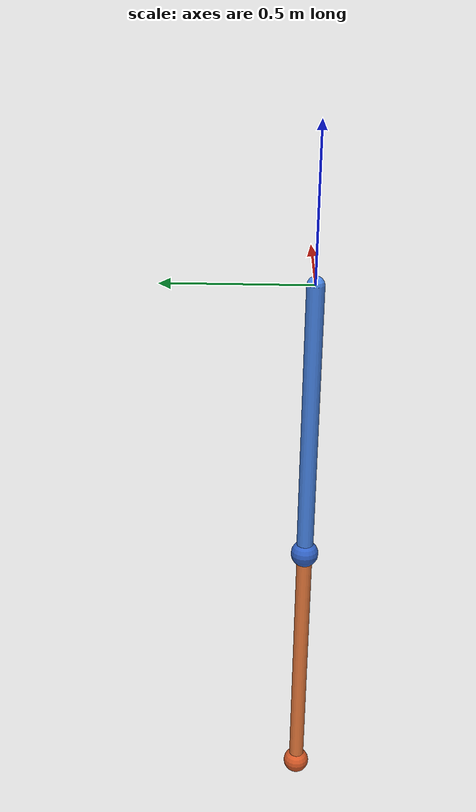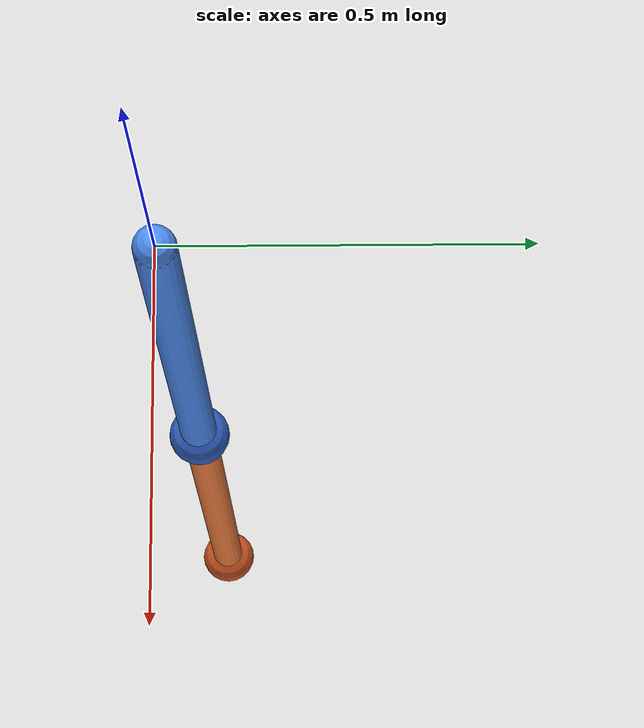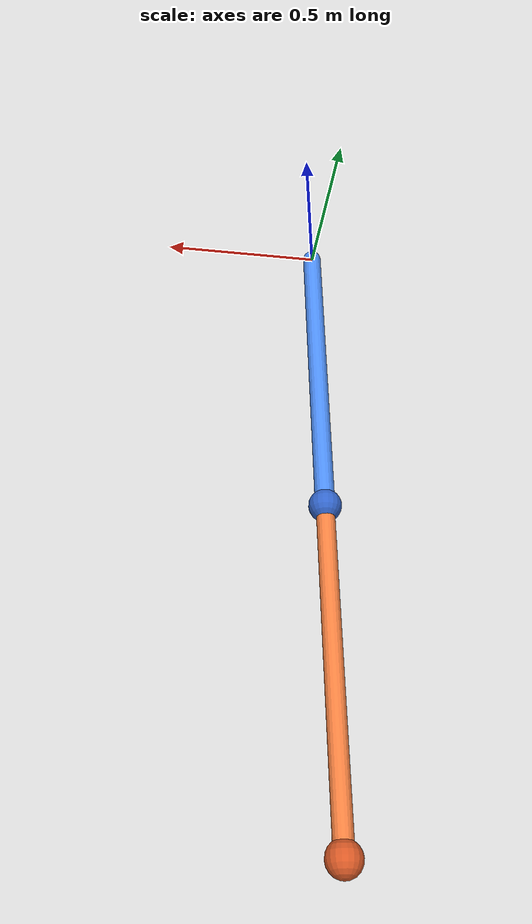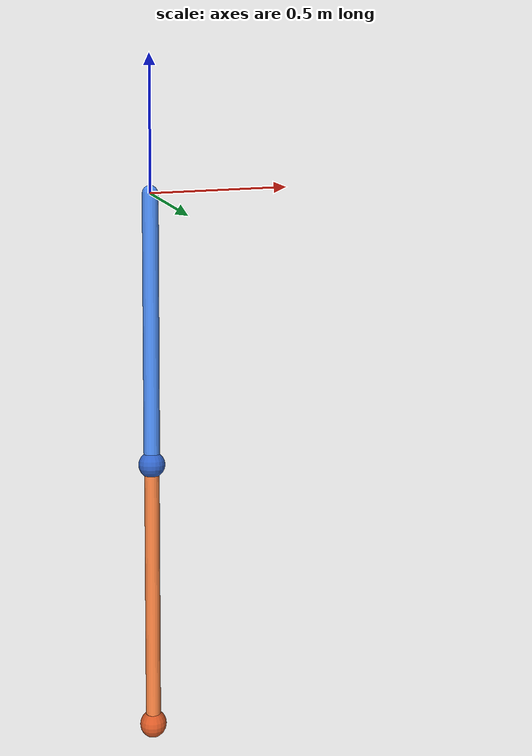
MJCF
<mujoco model="double_pendulum">
  <compiler angle="radian"/>
  <option gravity="0 0 -9.81" timestep="0.001" integrator="RK4"/>

  <visual>
    <headlight diffuse="0.8 0.8 0.8" ambient="0.25 0.25 0.25"/>
  </visual>

  <worldbody>
    <light pos="0 -2.2 1.6" dir="0 1 -0.7"/>
    <camera name="cam_side" pos="0 -2.4 0.2" xyaxes="1 0 0 0 0.15 0.99"/>

    <body name="link1" pos="0 0 0">
      <joint name="hinge1" type="hinge" axis="0 1 0" damping="0"/>

      <!-- Point-mass approximation at distal end of link1 -->
      <inertial pos="0 0 -1" mass="1.0" diaginertia="1e-6 1e-6 1e-6"/>

      <!-- Visual-only rod -->
      <geom name="rod1" type="capsule" fromto="0 0 0 0 0 -1" size="0.03" mass="0" rgba="0.30 0.55 0.95 1"/>
      <geom name="bob1" type="sphere" pos="0 0 -1" size="0.05" mass="0" rgba="0.20 0.40 0.80 1"/>

      <body name="link2" pos="0 0 -1">
        <joint name="hinge2" type="hinge" axis="0 1 0" damping="0"/>

        <!-- Point-mass approximation at distal end of link2 -->
        <inertial pos="0 0 -1" mass="1.0" diaginertia="1e-6 1e-6 1e-6"/>

        <!-- Visual-only rod -->
        <geom name="rod2" type="capsule" fromto="0 0 0 0 0 -1" size="0.028" mass="0" rgba="0.95 0.50 0.25 1"/>
        <geom name="bob2" type="sphere" pos="0 0 -1" size="0.05" mass="0" rgba="0.85 0.35 0.15 1"/>
      </body>
    </body>
  </worldbody>
</mujoco>
